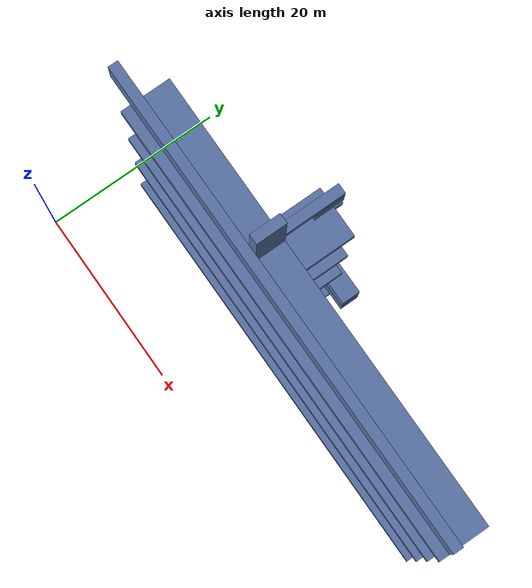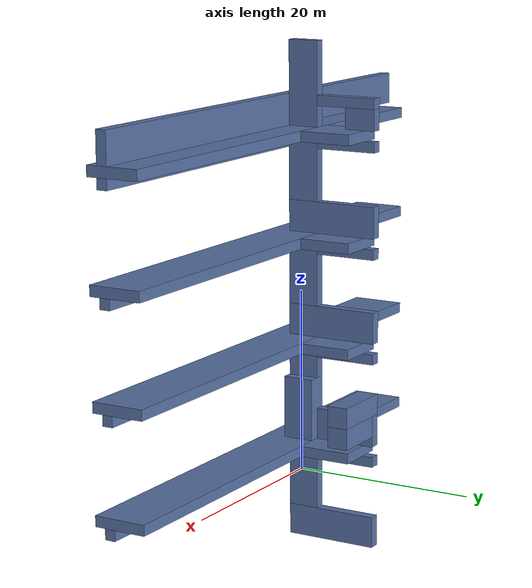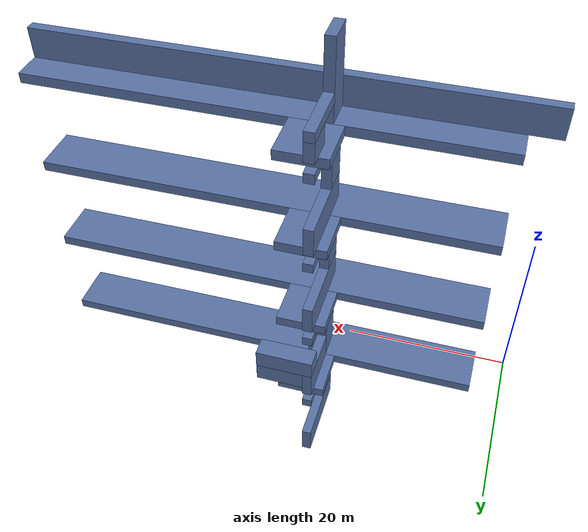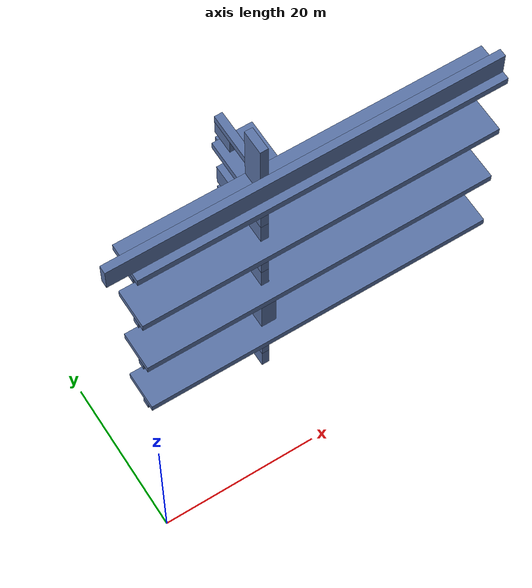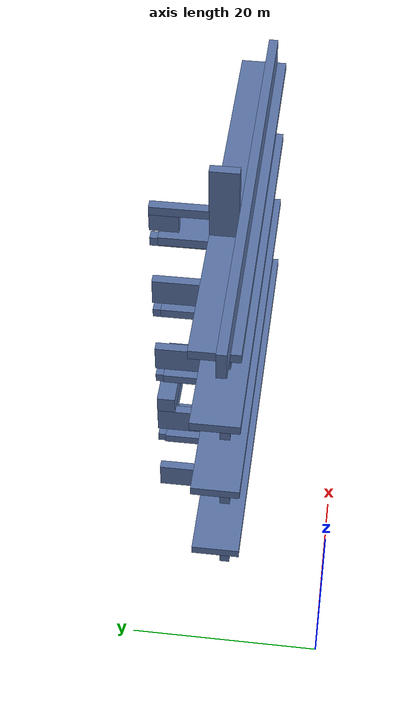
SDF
<sdf version="1.7">
 <world name="default">
  <model name="racer_env">
   <static>1</static>
   <link name="b20">
    <pose>25.500 10.500 42.500 0 0 0</pose>
    <collision name="c"><geometry><box><size>49.000 1.000 3.000</size></box></geometry></collision>
    <visual name="v">
     <geometry><box><size>49.000 1.000 3.000</size></box></geometry>
     <material><ambient>0.30 0.38 0.55 1</ambient><diffuse>0.35 0.45 0.65 1</diffuse></material>
    </visual>
   </link>
   <link name="b59">
    <pose>27.000 11.500 10.500 0 0 0</pose>
    <collision name="c"><geometry><box><size>46.000 5.000 1.000</size></box></geometry></collision>
    <visual name="v">
     <geometry><box><size>46.000 5.000 1.000</size></box></geometry>
     <material><ambient>0.30 0.38 0.55 1</ambient><diffuse>0.35 0.45 0.65 1</diffuse></material>
    </visual>
   </link>
   <link name="b60">
    <pose>27.000 11.500 20.500 0 0 0</pose>
    <collision name="c"><geometry><box><size>46.000 5.000 1.000</size></box></geometry></collision>
    <visual name="v">
     <geometry><box><size>46.000 5.000 1.000</size></box></geometry>
     <material><ambient>0.30 0.38 0.55 1</ambient><diffuse>0.35 0.45 0.65 1</diffuse></material>
    </visual>
   </link>
   <link name="b61">
    <pose>27.000 11.500 30.500 0 0 0</pose>
    <collision name="c"><geometry><box><size>46.000 5.000 1.000</size></box></geometry></collision>
    <visual name="v">
     <geometry><box><size>46.000 5.000 1.000</size></box></geometry>
     <material><ambient>0.30 0.38 0.55 1</ambient><diffuse>0.35 0.45 0.65 1</diffuse></material>
    </visual>
   </link>
   <link name="b62">
    <pose>27.000 11.500 40.500 0 0 0</pose>
    <collision name="c"><geometry><box><size>46.000 5.000 1.000</size></box></geometry></collision>
    <visual name="v">
     <geometry><box><size>46.000 5.000 1.000</size></box></geometry>
     <material><ambient>0.30 0.38 0.55 1</ambient><diffuse>0.35 0.45 0.65 1</diffuse></material>
    </visual>
   </link>
   <link name="b63">
    <pose>27.000 10.500 9.500 0 0 0</pose>
    <collision name="c"><geometry><box><size>46.000 1.000 1.000</size></box></geometry></collision>
    <visual name="v">
     <geometry><box><size>46.000 1.000 1.000</size></box></geometry>
     <material><ambient>0.30 0.38 0.55 1</ambient><diffuse>0.35 0.45 0.65 1</diffuse></material>
    </visual>
   </link>
   <link name="b64">
    <pose>27.000 10.500 19.500 0 0 0</pose>
    <collision name="c"><geometry><box><size>46.000 1.000 1.000</size></box></geometry></collision>
    <visual name="v">
     <geometry><box><size>46.000 1.000 1.000</size></box></geometry>
     <material><ambient>0.30 0.38 0.55 1</ambient><diffuse>0.35 0.45 0.65 1</diffuse></material>
    </visual>
   </link>
   <link name="b65">
    <pose>27.000 10.500 29.500 0 0 0</pose>
    <collision name="c"><geometry><box><size>46.000 1.000 1.000</size></box></geometry></collision>
    <visual name="v">
     <geometry><box><size>46.000 1.000 1.000</size></box></geometry>
     <material><ambient>0.30 0.38 0.55 1</ambient><diffuse>0.35 0.45 0.65 1</diffuse></material>
    </visual>
   </link>
   <link name="b66">
    <pose>27.000 10.500 39.500 0 0 0</pose>
    <collision name="c"><geometry><box><size>46.000 1.000 1.000</size></box></geometry></collision>
    <visual name="v">
     <geometry><box><size>46.000 1.000 1.000</size></box></geometry>
     <material><ambient>0.30 0.38 0.55 1</ambient><diffuse>0.35 0.45 0.65 1</diffuse></material>
    </visual>
   </link>
   <link name="b256">
    <pose>21.500 16.500 10.500 0 0 0</pose>
    <collision name="c"><geometry><box><size>5.000 5.000 1.000</size></box></geometry></collision>
    <visual name="v">
     <geometry><box><size>5.000 5.000 1.000</size></box></geometry>
     <material><ambient>0.30 0.38 0.55 1</ambient><diffuse>0.35 0.45 0.65 1</diffuse></material>
    </visual>
   </link>
   <link name="b257">
    <pose>21.500 16.500 20.500 0 0 0</pose>
    <collision name="c"><geometry><box><size>5.000 5.000 1.000</size></box></geometry></collision>
    <visual name="v">
     <geometry><box><size>5.000 5.000 1.000</size></box></geometry>
     <material><ambient>0.30 0.38 0.55 1</ambient><diffuse>0.35 0.45 0.65 1</diffuse></material>
    </visual>
   </link>
   <link name="b258">
    <pose>21.500 16.500 30.500 0 0 0</pose>
    <collision name="c"><geometry><box><size>5.000 5.000 1.000</size></box></geometry></collision>
    <visual name="v">
     <geometry><box><size>5.000 5.000 1.000</size></box></geometry>
     <material><ambient>0.30 0.38 0.55 1</ambient><diffuse>0.35 0.45 0.65 1</diffuse></material>
    </visual>
   </link>
   <link name="b259">
    <pose>21.500 16.500 40.500 0 0 0</pose>
    <collision name="c"><geometry><box><size>5.000 5.000 1.000</size></box></geometry></collision>
    <visual name="v">
     <geometry><box><size>5.000 5.000 1.000</size></box></geometry>
     <material><ambient>0.30 0.38 0.55 1</ambient><diffuse>0.35 0.45 0.65 1</diffuse></material>
    </visual>
   </link>
   <link name="b306">
    <pose>20.500 15.500 2.500 0 0 0</pose>
    <collision name="c"><geometry><box><size>1.000 9.000 3.000</size></box></geometry></collision>
    <visual name="v">
     <geometry><box><size>1.000 9.000 3.000</size></box></geometry>
     <material><ambient>0.30 0.38 0.55 1</ambient><diffuse>0.35 0.45 0.65 1</diffuse></material>
    </visual>
   </link>
   <link name="b307">
    <pose>20.500 12.500 7.000 0 0 0</pose>
    <collision name="c"><geometry><box><size>1.000 3.000 6.000</size></box></geometry></collision>
    <visual name="v">
     <geometry><box><size>1.000 3.000 6.000</size></box></geometry>
     <material><ambient>0.30 0.38 0.55 1</ambient><diffuse>0.35 0.45 0.65 1</diffuse></material>
    </visual>
   </link>
   <link name="b308">
    <pose>21.000 12.500 14.000 0 0 0</pose>
    <collision name="c"><geometry><box><size>2.000 3.000 6.000</size></box></geometry></collision>
    <visual name="v">
     <geometry><box><size>2.000 3.000 6.000</size></box></geometry>
     <material><ambient>0.30 0.38 0.55 1</ambient><diffuse>0.35 0.45 0.65 1</diffuse></material>
    </visual>
   </link>
   <link name="b309">
    <pose>20.500 12.500 18.500 0 0 0</pose>
    <collision name="c"><geometry><box><size>1.000 3.000 3.000</size></box></geometry></collision>
    <visual name="v">
     <geometry><box><size>1.000 3.000 3.000</size></box></geometry>
     <material><ambient>0.30 0.38 0.55 1</ambient><diffuse>0.35 0.45 0.65 1</diffuse></material>
    </visual>
   </link>
   <link name="b310">
    <pose>20.500 15.500 22.500 0 0 0</pose>
    <collision name="c"><geometry><box><size>1.000 9.000 3.000</size></box></geometry></collision>
    <visual name="v">
     <geometry><box><size>1.000 9.000 3.000</size></box></geometry>
     <material><ambient>0.30 0.38 0.55 1</ambient><diffuse>0.35 0.45 0.65 1</diffuse></material>
    </visual>
   </link>
   <link name="b311">
    <pose>20.500 12.500 27.000 0 0 0</pose>
    <collision name="c"><geometry><box><size>1.000 3.000 6.000</size></box></geometry></collision>
    <visual name="v">
     <geometry><box><size>1.000 3.000 6.000</size></box></geometry>
     <material><ambient>0.30 0.38 0.55 1</ambient><diffuse>0.35 0.45 0.65 1</diffuse></material>
    </visual>
   </link>
   <link name="b312">
    <pose>20.500 15.500 32.500 0 0 0</pose>
    <collision name="c"><geometry><box><size>1.000 9.000 3.000</size></box></geometry></collision>
    <visual name="v">
     <geometry><box><size>1.000 9.000 3.000</size></box></geometry>
     <material><ambient>0.30 0.38 0.55 1</ambient><diffuse>0.35 0.45 0.65 1</diffuse></material>
    </visual>
   </link>
   <link name="b313">
    <pose>20.500 12.500 37.000 0 0 0</pose>
    <collision name="c"><geometry><box><size>1.000 3.000 6.000</size></box></geometry></collision>
    <visual name="v">
     <geometry><box><size>1.000 3.000 6.000</size></box></geometry>
     <material><ambient>0.30 0.38 0.55 1</ambient><diffuse>0.35 0.45 0.65 1</diffuse></material>
    </visual>
   </link>
   <link name="b314">
    <pose>20.500 12.500 45.000 0 0 0</pose>
    <collision name="c"><geometry><box><size>1.000 3.000 8.000</size></box></geometry></collision>
    <visual name="v">
     <geometry><box><size>1.000 3.000 8.000</size></box></geometry>
     <material><ambient>0.30 0.38 0.55 1</ambient><diffuse>0.35 0.45 0.65 1</diffuse></material>
    </visual>
   </link>
   <link name="b315">
    <pose>20.500 17.000 9.500 0 0 0</pose>
    <collision name="c"><geometry><box><size>1.000 6.000 1.000</size></box></geometry></collision>
    <visual name="v">
     <geometry><box><size>1.000 6.000 1.000</size></box></geometry>
     <material><ambient>0.30 0.38 0.55 1</ambient><diffuse>0.35 0.45 0.65 1</diffuse></material>
    </visual>
   </link>
   <link name="b316">
    <pose>20.500 17.000 12.500 0 0 0</pose>
    <collision name="c"><geometry><box><size>1.000 6.000 3.000</size></box></geometry></collision>
    <visual name="v">
     <geometry><box><size>1.000 6.000 3.000</size></box></geometry>
     <material><ambient>0.30 0.38 0.55 1</ambient><diffuse>0.35 0.45 0.65 1</diffuse></material>
    </visual>
   </link>
   <link name="b317">
    <pose>20.500 17.000 19.500 0 0 0</pose>
    <collision name="c"><geometry><box><size>1.000 6.000 1.000</size></box></geometry></collision>
    <visual name="v">
     <geometry><box><size>1.000 6.000 1.000</size></box></geometry>
     <material><ambient>0.30 0.38 0.55 1</ambient><diffuse>0.35 0.45 0.65 1</diffuse></material>
    </visual>
   </link>
   <link name="b318">
    <pose>20.500 17.000 29.500 0 0 0</pose>
    <collision name="c"><geometry><box><size>1.000 6.000 1.000</size></box></geometry></collision>
    <visual name="v">
     <geometry><box><size>1.000 6.000 1.000</size></box></geometry>
     <material><ambient>0.30 0.38 0.55 1</ambient><diffuse>0.35 0.45 0.65 1</diffuse></material>
    </visual>
   </link>
   <link name="b319">
    <pose>20.500 17.000 39.500 0 0 0</pose>
    <collision name="c"><geometry><box><size>1.000 6.000 1.000</size></box></geometry></collision>
    <visual name="v">
     <geometry><box><size>1.000 6.000 1.000</size></box></geometry>
     <material><ambient>0.30 0.38 0.55 1</ambient><diffuse>0.35 0.45 0.65 1</diffuse></material>
    </visual>
   </link>
   <link name="b320">
    <pose>20.500 17.000 43.500 0 0 0</pose>
    <collision name="c"><geometry><box><size>1.000 6.000 1.000</size></box></geometry></collision>
    <visual name="v">
     <geometry><box><size>1.000 6.000 1.000</size></box></geometry>
     <material><ambient>0.30 0.38 0.55 1</ambient><diffuse>0.35 0.45 0.65 1</diffuse></material>
    </visual>
   </link>
   <link name="b321">
    <pose>20.500 18.500 42.000 0 0 0</pose>
    <collision name="c"><geometry><box><size>1.000 3.000 2.000</size></box></geometry></collision>
    <visual name="v">
     <geometry><box><size>1.000 3.000 2.000</size></box></geometry>
     <material><ambient>0.30 0.38 0.55 1</ambient><diffuse>0.35 0.45 0.65 1</diffuse></material>
    </visual>
   </link>
   <link name="b322">
    <pose>23.000 19.000 15.000 0 0 0</pose>
    <collision name="c"><geometry><box><size>6.000 2.000 2.000</size></box></geometry></collision>
    <visual name="v">
     <geometry><box><size>6.000 2.000 2.000</size></box></geometry>
     <material><ambient>0.30 0.38 0.55 1</ambient><diffuse>0.35 0.45 0.65 1</diffuse></material>
    </visual>
   </link>
   <link name="b382">
    <pose>23.500 19.000 13.000 0 0 0</pose>
    <collision name="c"><geometry><box><size>5.000 2.000 2.000</size></box></geometry></collision>
    <visual name="v">
     <geometry><box><size>5.000 2.000 2.000</size></box></geometry>
     <material><ambient>0.30 0.38 0.55 1</ambient><diffuse>0.35 0.45 0.65 1</diffuse></material>
    </visual>
   </link>
  </model>
 </world>
</sdf>
